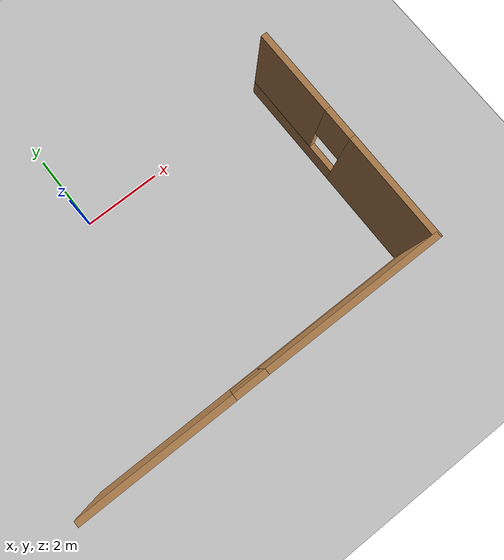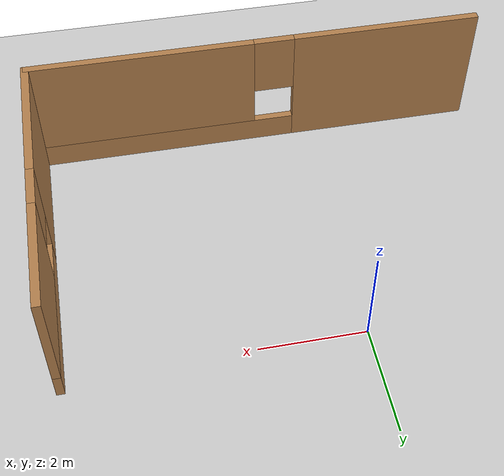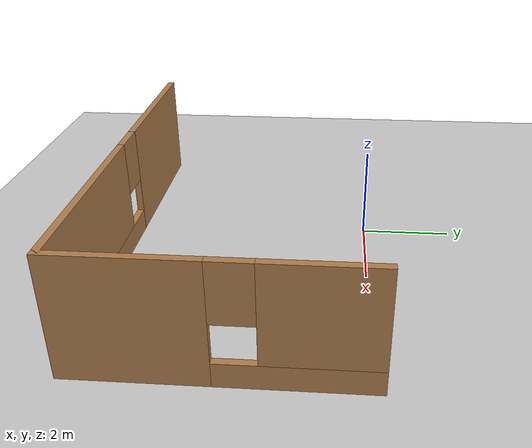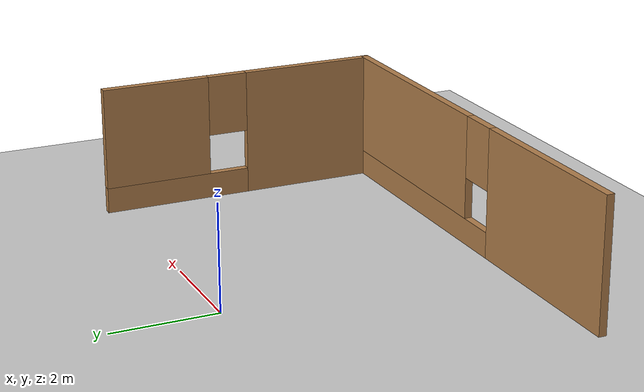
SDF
<sdf version="1.6">
 <world name="default">
  <model name="ground_plane">
   <static>1</static>
   <link name="link">
    <collision name="collision">
     <geometry><plane><normal>0 0 1</normal><size>100 100</size></plane></geometry>
     <surface><friction><ode><mu>100</mu><mu2>50</mu2></ode></friction></surface>
    </collision>
    <visual name="visual">
     <cast_shadows>0</cast_shadows>
     <geometry><plane><normal>0 0 1</normal><size>100 100</size></plane></geometry>
     <material>
      <script><uri>file://media/materials/scripts/gazebo.material</uri><name>Gazebo/Grey</name></script>
     </material>
    </visual>
   </link>
  </model>
  <model name="myHouse">
   <link name="Wall_1">
    <pose>4.45004 -12.0042 0 0 -0 0</pose>
    <visual name="Wall_1_Visual_0">
     <pose>-2.62145 0 1.25 0 -0 0</pose>
     <geometry><box><size>3.7571 0.15 2.5</size></box></geometry>
     <material>
      <script><uri>file://media/materials/scripts/gazebo.material</uri><name>Gazebo/Wood</name></script>
      <ambient>1 1 1 1</ambient>
      <diffuse>1 1 1 1</diffuse>
      <specular>0.2 0.2 0.2 1</specular>
      <emissive>0 0 0 1</emissive>
     </material>
     <meta><layer>0</layer></meta>
    </visual>
    <visual name="Wall_1_Visual_1">
     <pose>1.87855 0 0.25 0 -0 0</pose>
     <geometry><box><size>5.2429 0.15 0.5</size></box></geometry>
     <material>
      <script><uri>file://media/materials/scripts/gazebo.material</uri><name>Gazebo/Wood</name></script>
      <ambient>1 1 1 1</ambient>
      <diffuse>1 1 1 1</diffuse>
      <specular>0.2 0.2 0.2 1</specular>
      <emissive>0 0 0 1</emissive>
     </material>
     <meta><layer>0</layer></meta>
    </visual>
    <visual name="Wall_1_Visual_2">
     <pose>2.27855 0 1.5 0 -0 0</pose>
     <geometry><box><size>4.4429 0.15 2</size></box></geometry>
     <material>
      <script><uri>file://media/materials/scripts/gazebo.material</uri><name>Gazebo/Wood</name></script>
      <ambient>1 1 1 1</ambient>
      <diffuse>1 1 1 1</diffuse>
      <specular>0.2 0.2 0.2 1</specular>
      <emissive>0 0 0 1</emissive>
     </material>
     <meta><layer>0</layer></meta>
    </visual>
    <visual name="Wall_1_Visual_3">
     <pose>-0.342896 0 1.9 0 -0 0</pose>
     <geometry><box><size>0.8 0.15 1.2</size></box></geometry>
     <material>
      <script><uri>file://media/materials/scripts/gazebo.material</uri><name>Gazebo/Wood</name></script>
      <ambient>1 1 1 1</ambient>
      <diffuse>1 1 1 1</diffuse>
      <specular>0.2 0.2 0.2 1</specular>
      <emissive>0 0 0 1</emissive>
     </material>
     <meta><layer>0</layer></meta>
    </visual>
    <collision name="Wall_1_Collision_0">
     <pose>-2.62145 0 1.25 0 -0 0</pose>
     <geometry><box><size>3.7571 0.15 2.5</size></box></geometry>
     <surface>
      <friction>
       <ode><mu>1</mu><mu2>1</mu2><fdir1>0 0 0</fdir1><slip1>0</slip1><slip2>0</slip2></ode>
       <torsional>
        <coefficient>1</coefficient>
        <patch_radius>0</patch_radius>
        <surface_radius>0</surface_radius>
        <use_patch_radius>1</use_patch_radius>
        <ode><slip>0</slip></ode>
       </torsional>
      </friction>
      <bounce><restitution_coefficient>0</restitution_coefficient><threshold>1e+06</threshold></bounce>
      <contact>
       <collide_without_contact>0</collide_without_contact>
       <collide_without_contact_bitmask>1</collide_without_contact_bitmask>
       <collide_bitmask>1</collide_bitmask>
       <ode>
        <soft_cfm>0</soft_cfm>
        <soft_erp>0.2</soft_erp>
        <kp>1e+13</kp>
        <kd>1</kd>
        <max_vel>0.01</max_vel>
        <min_depth>0</min_depth>
       </ode>
       <bullet>
        <split_impulse>1</split_impulse>
        <split_impulse_penetration_threshold>-0.01</split_impulse_penetration_threshold>
        <soft_cfm>0</soft_cfm>
        <soft_erp>0.2</soft_erp>
        <kp>1e+13</kp>
        <kd>1</kd>
       </bullet>
      </contact>
     </surface>
    </collision>
    <collision name="Wall_1_Collision_1">
     <pose>1.87855 0 0.25 0 -0 0</pose>
     <geometry><box><size>5.2429 0.15 0.5</size></box></geometry>
     <surface>
      <friction>
       <ode><mu>1</mu><mu2>1</mu2><fdir1>0 0 0</fdir1><slip1>0</slip1><slip2>0</slip2></ode>
       <torsional>
        <coefficient>1</coefficient>
        <patch_radius>0</patch_radius>
        <surface_radius>0</surface_radius>
        <use_patch_radius>1</use_patch_radius>
        <ode><slip>0</slip></ode>
       </torsional>
      </friction>
      <bounce><restitution_coefficient>0</restitution_coefficient><threshold>1e+06</threshold></bounce>
      <contact>
       <collide_without_contact>0</collide_without_contact>
       <collide_without_contact_bitmask>1</collide_without_contact_bitmask>
       <collide_bitmask>1</collide_bitmask>
       <ode>
        <soft_cfm>0</soft_cfm>
        <soft_erp>0.2</soft_erp>
        <kp>1e+13</kp>
        <kd>1</kd>
        <max_vel>0.01</max_vel>
        <min_depth>0</min_depth>
       </ode>
       <bullet>
        <split_impulse>1</split_impulse>
        <split_impulse_penetration_threshold>-0.01</split_impulse_penetration_threshold>
        <soft_cfm>0</soft_cfm>
        <soft_erp>0.2</soft_erp>
        <kp>1e+13</kp>
        <kd>1</kd>
       </bullet>
      </contact>
     </surface>
    </collision>
    <collision name="Wall_1_Collision_2">
     <pose>2.27855 0 1.5 0 -0 0</pose>
     <geometry><box><size>4.4429 0.15 2</size></box></geometry>
     <surface>
      <friction>
       <ode><mu>1</mu><mu2>1</mu2><fdir1>0 0 0</fdir1><slip1>0</slip1><slip2>0</slip2></ode>
       <torsional>
        <coefficient>1</coefficient>
        <patch_radius>0</patch_radius>
        <surface_radius>0</surface_radius>
        <use_patch_radius>1</use_patch_radius>
        <ode><slip>0</slip></ode>
       </torsional>
      </friction>
      <bounce><restitution_coefficient>0</restitution_coefficient><threshold>1e+06</threshold></bounce>
      <contact>
       <collide_without_contact>0</collide_without_contact>
       <collide_without_contact_bitmask>1</collide_without_contact_bitmask>
       <collide_bitmask>1</collide_bitmask>
       <ode>
        <soft_cfm>0</soft_cfm>
        <soft_erp>0.2</soft_erp>
        <kp>1e+13</kp>
        <kd>1</kd>
        <max_vel>0.01</max_vel>
        <min_depth>0</min_depth>
       </ode>
       <bullet>
        <split_impulse>1</split_impulse>
        <split_impulse_penetration_threshold>-0.01</split_impulse_penetration_threshold>
        <soft_cfm>0</soft_cfm>
        <soft_erp>0.2</soft_erp>
        <kp>1e+13</kp>
        <kd>1</kd>
       </bullet>
      </contact>
     </surface>
    </collision>
    <collision name="Wall_1_Collision_3">
     <pose>-0.342896 0 1.9 0 -0 0</pose>
     <geometry><box><size>0.8 0.15 1.2</size></box></geometry>
     <surface>
      <friction>
       <ode><mu>1</mu><mu2>1</mu2><fdir1>0 0 0</fdir1><slip1>0</slip1><slip2>0</slip2></ode>
       <torsional>
        <coefficient>1</coefficient>
        <patch_radius>0</patch_radius>
        <surface_radius>0</surface_radius>
        <use_patch_radius>1</use_patch_radius>
        <ode><slip>0</slip></ode>
       </torsional>
      </friction>
      <bounce><restitution_coefficient>0</restitution_coefficient><threshold>1e+06</threshold></bounce>
      <contact>
       <collide_without_contact>0</collide_without_contact>
       <collide_without_contact_bitmask>1</collide_without_contact_bitmask>
       <collide_bitmask>1</collide_bitmask>
       <ode>
        <soft_cfm>0</soft_cfm>
        <soft_erp>0.2</soft_erp>
        <kp>1e+13</kp>
        <kd>1</kd>
        <max_vel>0.01</max_vel>
        <min_depth>0</min_depth>
       </ode>
       <bullet>
        <split_impulse>1</split_impulse>
        <split_impulse_penetration_threshold>-0.01</split_impulse_penetration_threshold>
        <soft_cfm>0</soft_cfm>
        <soft_erp>0.2</soft_erp>
        <kp>1e+13</kp>
        <kd>1</kd>
       </bullet>
      </contact>
     </surface>
    </collision>
   </link>
   <link name="Wall_2">
    <pose>8.91022 -9.23751 0 0 -0 1.5708</pose>
    <visual name="Wall_2_Visual_0">
     <pose>-1.47369 0 1.25 0 -0 0</pose>
     <geometry><box><size>2.73646 0.15 2.5</size></box></geometry>
     <material>
      <script><uri>file://media/materials/scripts/gazebo.material</uri><name>Gazebo/Wood</name></script>
      <ambient>1 1 1 1</ambient>
      <diffuse>1 1 1 1</diffuse>
      <specular>0.2 0.2 0.2 1</specular>
      <emissive>0 0 0 1</emissive>
     </material>
     <meta><layer>0</layer></meta>
    </visual>
    <visual name="Wall_2_Visual_1">
     <pose>1.36823 0 0.25 0 -0 0</pose>
     <geometry><box><size>2.94738 0.15 0.5</size></box></geometry>
     <material>
      <script><uri>file://media/materials/scripts/gazebo.material</uri><name>Gazebo/Wood</name></script>
      <ambient>1 1 1 1</ambient>
      <diffuse>1 1 1 1</diffuse>
      <specular>0.2 0.2 0.2 1</specular>
      <emissive>0 0 0 1</emissive>
     </material>
     <meta><layer>0</layer></meta>
    </visual>
    <visual name="Wall_2_Visual_2">
     <pose>1.76823 0 1.5 0 -0 0</pose>
     <geometry><box><size>2.14738 0.15 2</size></box></geometry>
     <material>
      <script><uri>file://media/materials/scripts/gazebo.material</uri><name>Gazebo/Wood</name></script>
      <ambient>1 1 1 1</ambient>
      <diffuse>1 1 1 1</diffuse>
      <specular>0.2 0.2 0.2 1</specular>
      <emissive>0 0 0 1</emissive>
     </material>
     <meta><layer>0</layer></meta>
    </visual>
    <visual name="Wall_2_Visual_3">
     <pose>0.294538 0 1.9 0 -0 0</pose>
     <geometry><box><size>0.8 0.15 1.2</size></box></geometry>
     <material>
      <script><uri>file://media/materials/scripts/gazebo.material</uri><name>Gazebo/Wood</name></script>
      <ambient>1 1 1 1</ambient>
      <diffuse>1 1 1 1</diffuse>
      <specular>0.2 0.2 0.2 1</specular>
      <emissive>0 0 0 1</emissive>
     </material>
     <meta><layer>0</layer></meta>
    </visual>
    <collision name="Wall_2_Collision_0">
     <pose>-1.47369 0 1.25 0 -0 0</pose>
     <geometry><box><size>2.73646 0.15 2.5</size></box></geometry>
     <surface>
      <friction>
       <ode><mu>1</mu><mu2>1</mu2><fdir1>0 0 0</fdir1><slip1>0</slip1><slip2>0</slip2></ode>
       <torsional>
        <coefficient>1</coefficient>
        <patch_radius>0</patch_radius>
        <surface_radius>0</surface_radius>
        <use_patch_radius>1</use_patch_radius>
        <ode><slip>0</slip></ode>
       </torsional>
      </friction>
      <bounce><restitution_coefficient>0</restitution_coefficient><threshold>1e+06</threshold></bounce>
      <contact>
       <collide_without_contact>0</collide_without_contact>
       <collide_without_contact_bitmask>1</collide_without_contact_bitmask>
       <collide_bitmask>1</collide_bitmask>
       <ode>
        <soft_cfm>0</soft_cfm>
        <soft_erp>0.2</soft_erp>
        <kp>1e+13</kp>
        <kd>1</kd>
        <max_vel>0.01</max_vel>
        <min_depth>0</min_depth>
       </ode>
       <bullet>
        <split_impulse>1</split_impulse>
        <split_impulse_penetration_threshold>-0.01</split_impulse_penetration_threshold>
        <soft_cfm>0</soft_cfm>
        <soft_erp>0.2</soft_erp>
        <kp>1e+13</kp>
        <kd>1</kd>
       </bullet>
      </contact>
     </surface>
    </collision>
    <collision name="Wall_2_Collision_1">
     <pose>1.36823 0 0.25 0 -0 0</pose>
     <geometry><box><size>2.94738 0.15 0.5</size></box></geometry>
     <surface>
      <friction>
       <ode><mu>1</mu><mu2>1</mu2><fdir1>0 0 0</fdir1><slip1>0</slip1><slip2>0</slip2></ode>
       <torsional>
        <coefficient>1</coefficient>
        <patch_radius>0</patch_radius>
        <surface_radius>0</surface_radius>
        <use_patch_radius>1</use_patch_radius>
        <ode><slip>0</slip></ode>
       </torsional>
      </friction>
      <bounce><restitution_coefficient>0</restitution_coefficient><threshold>1e+06</threshold></bounce>
      <contact>
       <collide_without_contact>0</collide_without_contact>
       <collide_without_contact_bitmask>1</collide_without_contact_bitmask>
       <collide_bitmask>1</collide_bitmask>
       <ode>
        <soft_cfm>0</soft_cfm>
        <soft_erp>0.2</soft_erp>
        <kp>1e+13</kp>
        <kd>1</kd>
        <max_vel>0.01</max_vel>
        <min_depth>0</min_depth>
       </ode>
       <bullet>
        <split_impulse>1</split_impulse>
        <split_impulse_penetration_threshold>-0.01</split_impulse_penetration_threshold>
        <soft_cfm>0</soft_cfm>
        <soft_erp>0.2</soft_erp>
        <kp>1e+13</kp>
        <kd>1</kd>
       </bullet>
      </contact>
     </surface>
    </collision>
    <collision name="Wall_2_Collision_2">
     <pose>1.76823 0 1.5 0 -0 0</pose>
     <geometry><box><size>2.14738 0.15 2</size></box></geometry>
     <surface>
      <friction>
       <ode><mu>1</mu><mu2>1</mu2><fdir1>0 0 0</fdir1><slip1>0</slip1><slip2>0</slip2></ode>
       <torsional>
        <coefficient>1</coefficient>
        <patch_radius>0</patch_radius>
        <surface_radius>0</surface_radius>
        <use_patch_radius>1</use_patch_radius>
        <ode><slip>0</slip></ode>
       </torsional>
      </friction>
      <bounce><restitution_coefficient>0</restitution_coefficient><threshold>1e+06</threshold></bounce>
      <contact>
       <collide_without_contact>0</collide_without_contact>
       <collide_without_contact_bitmask>1</collide_without_contact_bitmask>
       <collide_bitmask>1</collide_bitmask>
       <ode>
        <soft_cfm>0</soft_cfm>
        <soft_erp>0.2</soft_erp>
        <kp>1e+13</kp>
        <kd>1</kd>
        <max_vel>0.01</max_vel>
        <min_depth>0</min_depth>
       </ode>
       <bullet>
        <split_impulse>1</split_impulse>
        <split_impulse_penetration_threshold>-0.01</split_impulse_penetration_threshold>
        <soft_cfm>0</soft_cfm>
        <soft_erp>0.2</soft_erp>
        <kp>1e+13</kp>
        <kd>1</kd>
       </bullet>
      </contact>
     </surface>
    </collision>
    <collision name="Wall_2_Collision_3">
     <pose>0.294538 0 1.9 0 -0 0</pose>
     <geometry><box><size>0.8 0.15 1.2</size></box></geometry>
     <surface>
      <friction>
       <ode><mu>1</mu><mu2>1</mu2><fdir1>0 0 0</fdir1><slip1>0</slip1><slip2>0</slip2></ode>
       <torsional>
        <coefficient>1</coefficient>
        <patch_radius>0</patch_radius>
        <surface_radius>0</surface_radius>
        <use_patch_radius>1</use_patch_radius>
        <ode><slip>0</slip></ode>
       </torsional>
      </friction>
      <bounce><restitution_coefficient>0</restitution_coefficient><threshold>1e+06</threshold></bounce>
      <contact>
       <collide_without_contact>0</collide_without_contact>
       <collide_without_contact_bitmask>1</collide_without_contact_bitmask>
       <collide_bitmask>1</collide_bitmask>
       <ode>
        <soft_cfm>0</soft_cfm>
        <soft_erp>0.2</soft_erp>
        <kp>1e+13</kp>
        <kd>1</kd>
        <max_vel>0.01</max_vel>
        <min_depth>0</min_depth>
       </ode>
       <bullet>
        <split_impulse>1</split_impulse>
        <split_impulse_penetration_threshold>-0.01</split_impulse_penetration_threshold>
        <soft_cfm>0</soft_cfm>
        <soft_erp>0.2</soft_erp>
        <kp>1e+13</kp>
        <kd>1</kd>
       </bullet>
      </contact>
     </surface>
    </collision>
   </link>
   <static>1</static>
   <pose>-3.47025 6.64899 0 0 -0 0</pose>
  </model>
 </world>
</sdf>
